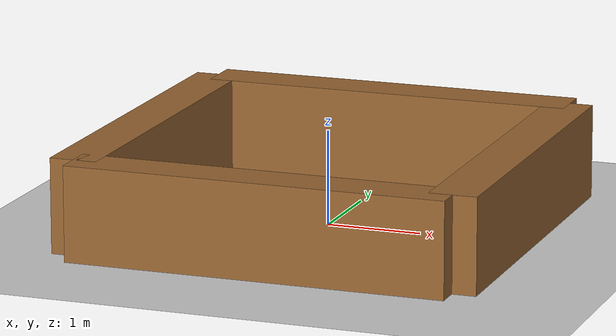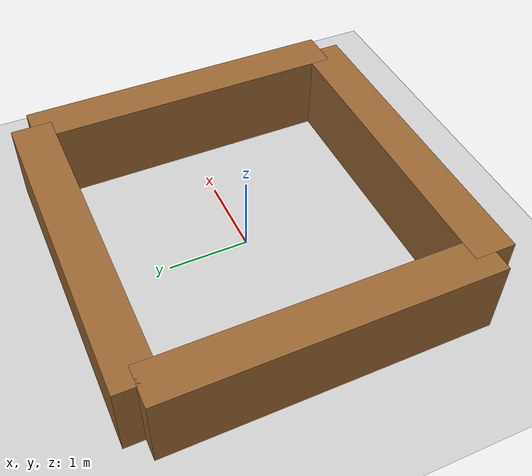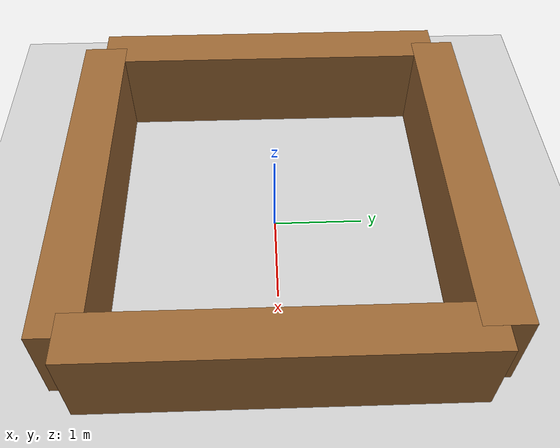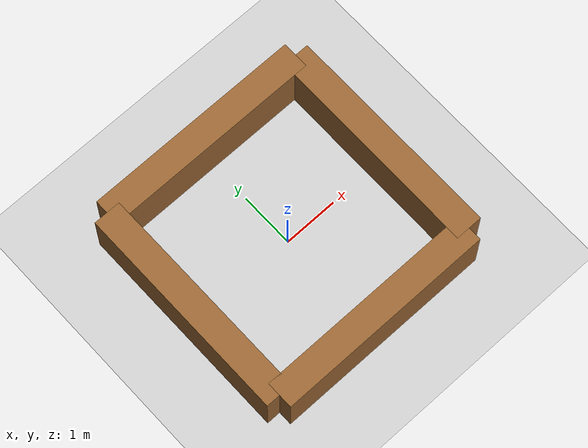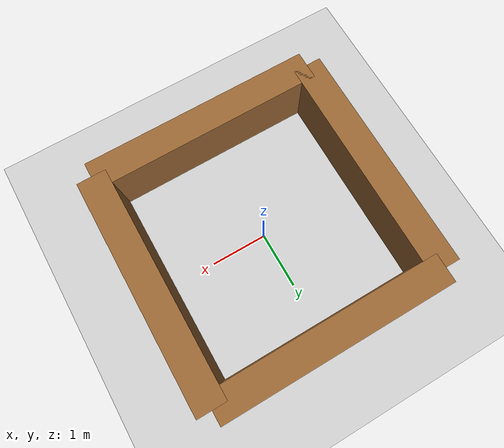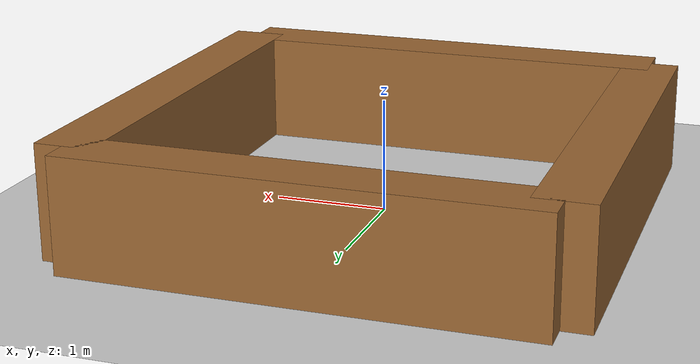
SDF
<?xml version="1.0" ?>
<sdf version="1.10">
  <world name="empty">
    <physics name="5ms" type="ignored">
      <max_step_size>0.005</max_step_size>
      <real_time_factor>1.0</real_time_factor>
    </physics>

    <plugin filename="gz-sim-physics-system" name="gz::sim::systems::Physics"/>
    <plugin filename="gz-sim-user-commands-system" name="gz::sim::systems::UserCommands"/>
    <plugin filename="gz-sim-scene-broadcaster-system" name="gz::sim::systems::SceneBroadcaster"/>
    <plugin filename="gz-sim-sensors-system" name="gz::sim::systems::Sensors">
      <render_engine>ogre</render_engine>
    </plugin>
    <plugin filename="gz-sim-imu-system" name="gz::sim::systems::Imu"/>
    <plugin filename="gz-sim-contact-system" name="gz::sim::systems::Contact"/>

    <light type="directional" name="sun">
      <cast_shadows>true</cast_shadows>
      <pose>0 0 10 0 0 0</pose>
      <diffuse>0.8 0.8 0.8 1</diffuse>
      <specular>0.2 0.2 0.2 1</specular>
      <attenuation>
        <range>1000</range>
        <constant>0.9</constant>
        <linear>0.01</linear>
        <quadratic>0.001</quadratic>
      </attenuation>
      <direction>-0.5 0.1 -0.9</direction>
    </light>

    <model name="ground_plane">
      <static>true</static>
      <link name="link">
        <collision name="collision">
          <geometry>
            <plane>
              <normal>0 0 1</normal>
              <size>100 100</size>
            </plane>
          </geometry>
        </collision>
        <visual name="visual">
          <geometry>
            <plane>
              <normal>0 0 1</normal>
              <size>100 100</size>
            </plane>
          </geometry>
          <material>
            <ambient>0.8 0.8 0.8 1</ambient>
            <diffuse>0.8 0.8 0.8 1</diffuse>
            <specular>0.8 0.8 0.8 1</specular>
          </material>
        </visual>
      </link>
    </model>

    <!-- A few boxes to give SLAM something to map -->
    <model name="box_1">
      <static>true</static>
      <pose>2 0 0.5 0 0 0</pose>
      <link name="link">
        <collision name="c"><geometry><box><size>0.5 4 1</size></box></geometry></collision>
        <visual name="v">
          <geometry><box><size>0.5 4 1</size></box></geometry>
          <material><ambient>0.6 0.4 0.2 1</ambient><diffuse>0.6 0.4 0.2 1</diffuse></material>
        </visual>
      </link>
    </model>
    <model name="box_2">
      <static>true</static>
      <pose>-2 0 0.5 0 0 0</pose>
      <link name="link">
        <collision name="c"><geometry><box><size>0.5 4 1</size></box></geometry></collision>
        <visual name="v">
          <geometry><box><size>0.5 4 1</size></box></geometry>
          <material><ambient>0.6 0.4 0.2 1</ambient><diffuse>0.6 0.4 0.2 1</diffuse></material>
        </visual>
      </link>
    </model>
    <model name="box_3">
      <static>true</static>
      <pose>0 2 0.5 0 0 0</pose>
      <link name="link">
        <collision name="c"><geometry><box><size>4 0.5 1</size></box></geometry></collision>
        <visual name="v">
          <geometry><box><size>4 0.5 1</size></box></geometry>
          <material><ambient>0.6 0.4 0.2 1</ambient><diffuse>0.6 0.4 0.2 1</diffuse></material>
        </visual>
      </link>
    </model>
    <model name="box_4">
      <static>true</static>
      <pose>0 -2 0.5 0 0 0</pose>
      <link name="link">
        <collision name="c"><geometry><box><size>4 0.5 1</size></box></geometry></collision>
        <visual name="v">
          <geometry><box><size>4 0.5 1</size></box></geometry>
          <material><ambient>0.6 0.4 0.2 1</ambient><diffuse>0.6 0.4 0.2 1</diffuse></material>
        </visual>
      </link>
    </model>
  </world>
</sdf>
